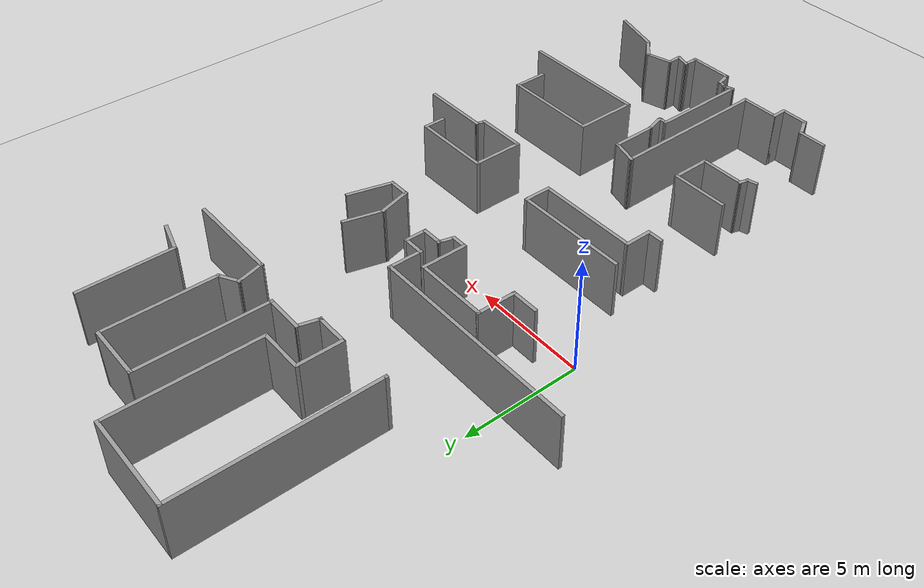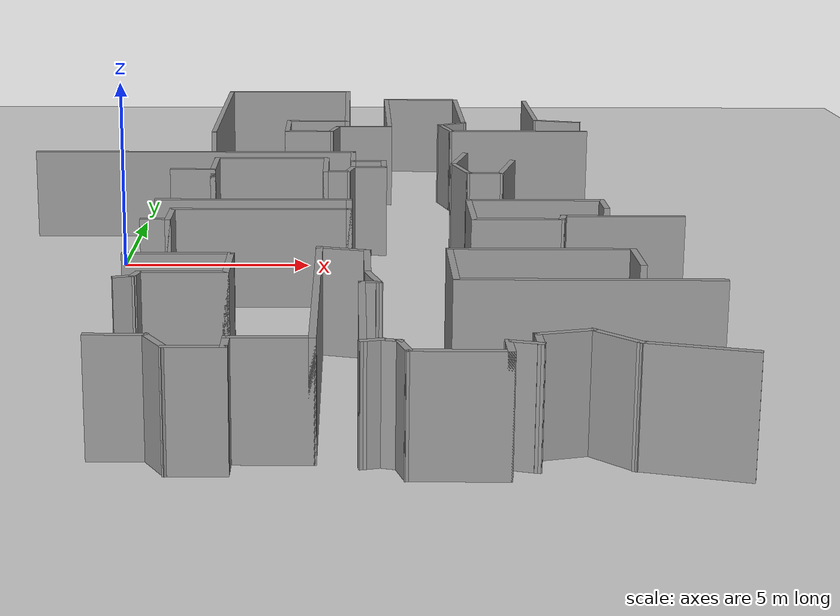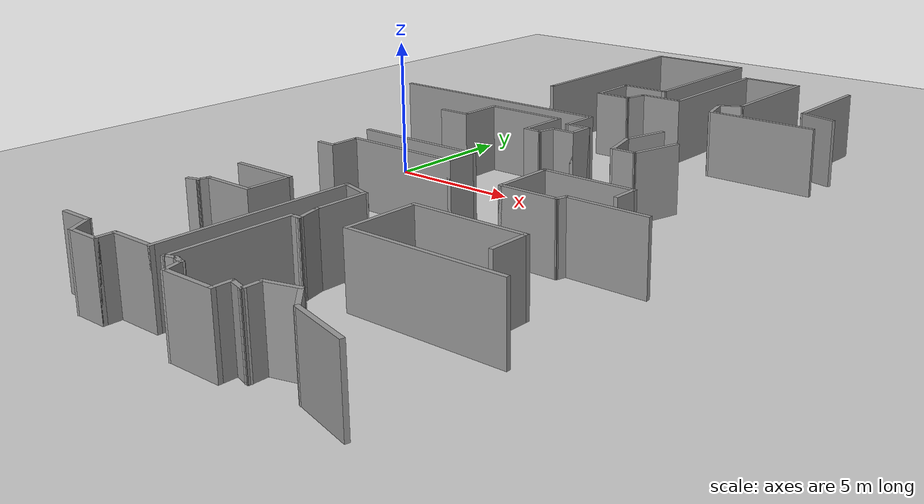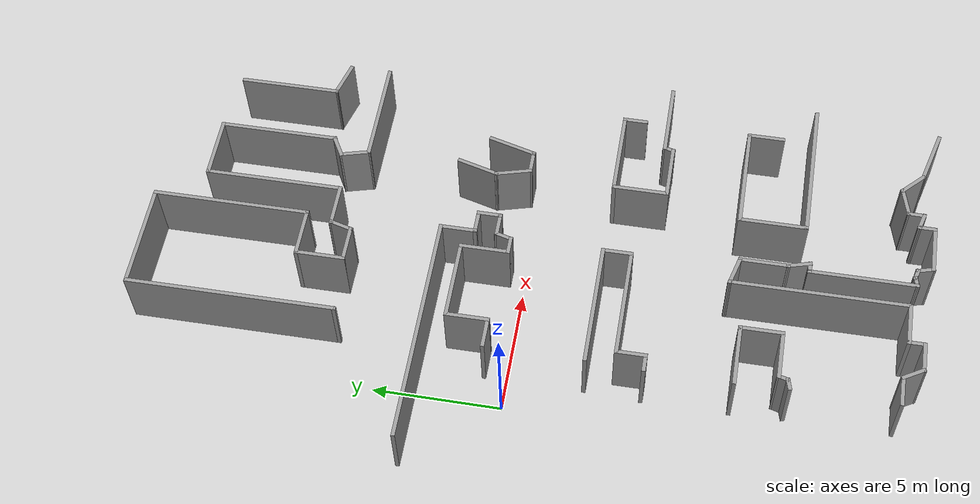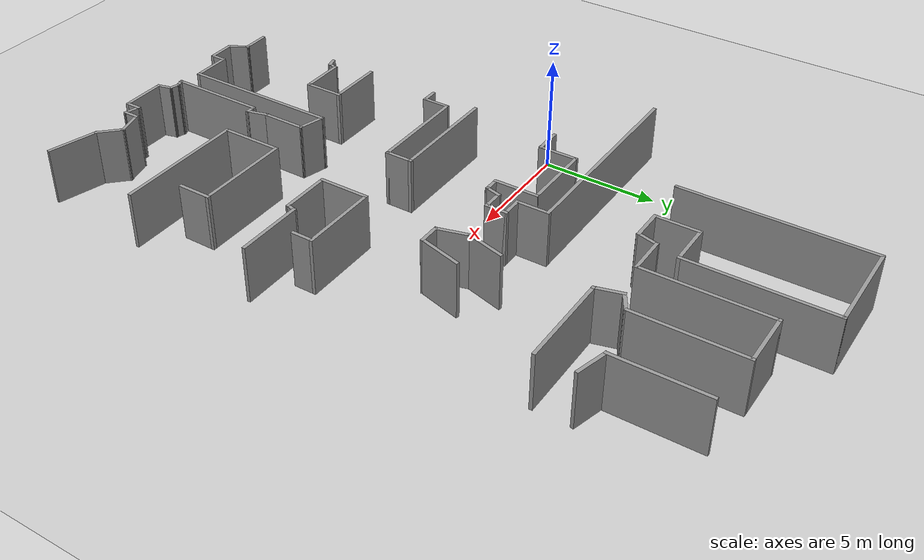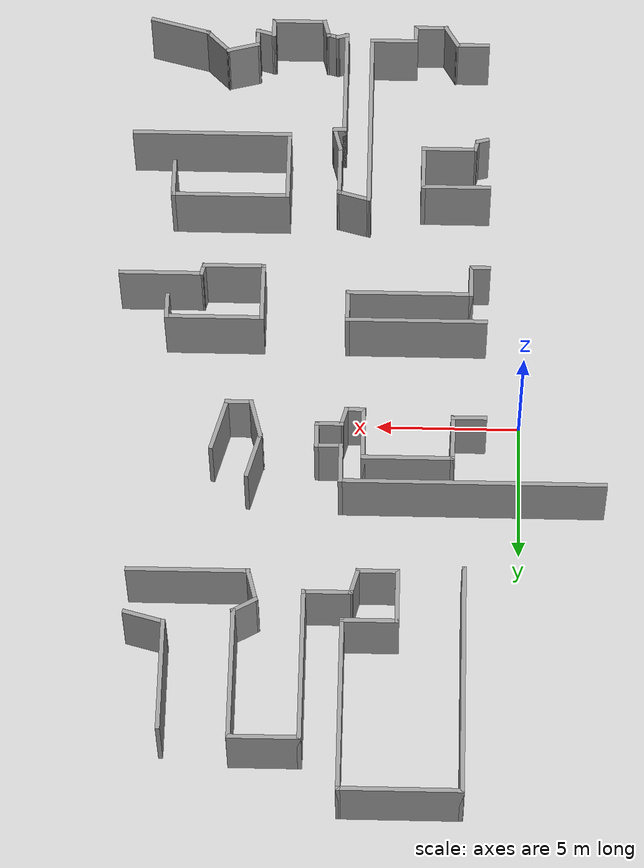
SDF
<sdf version="1.7">
 <world name="default">
  <model name="ground_plane">
   <static>1</static>
   <link name="link">
    <collision name="collision">
     <geometry><plane><normal>0 0 1</normal><size>100 100</size></plane></geometry>
     <surface>
      <contact><collide_bitmask>65535</collide_bitmask></contact>
      <friction><ode><mu>100</mu><mu2>50</mu2></ode></friction>
     </surface>
    </collision>
    <visual name="visual">
     <cast_shadows>0</cast_shadows>
     <geometry><plane><normal>0 0 1</normal><size>100 100</size></plane></geometry>
     <material>
      <script><uri>file://media/materials/scripts/gazebo.material</uri><name>Gazebo/Grey</name></script>
     </material>
    </visual>
   </link>
  </model>
  <model name="Hospital">
   <pose>0.328682 -0.388502 0 0 -0 0</pose>
   <link name="Wall_136">
    <collision name="Wall_136_Collision">
     <geometry><box><size>1.75 0.15 2.5</size></box></geometry>
     <pose>0 0 1.25 0 -0 0</pose>
    </collision>
    <visual name="Wall_136_Visual">
     <pose>0 0 1.25 0 -0 0</pose>
     <geometry><box><size>1.75 0.15 2.5</size></box></geometry>
     <material>
      <script><uri>file://media/materials/scripts/gazebo.material</uri><name>Gazebo/Grey</name></script>
      <ambient>1 1 1 1</ambient>
     </material>
     <meta><layer>0</layer></meta>
    </visual>
    <pose>8.88788 2.87767 0 0 -0 -1.8326</pose>
   </link>
   <link name="Wall_137">
    <collision name="Wall_137_Collision">
     <geometry><box><size>1.5 0.15 2.5</size></box></geometry>
     <pose>0 0 1.25 0 -0 0</pose>
    </collision>
    <visual name="Wall_137_Visual">
     <pose>0 0 1.25 0 -0 0</pose>
     <geometry><box><size>1.5 0.15 2.5</size></box></geometry>
     <material>
      <script><uri>file://media/materials/scripts/gazebo.material</uri><name>Gazebo/Grey</name></script>
      <ambient>1 1 1 1</ambient>
     </material>
     <meta><layer>0</layer></meta>
    </visual>
    <pose>8.85553 1.45293 0 0 -0 -1.309</pose>
   </link>
   <link name="Wall_138">
    <collision name="Wall_138_Collision">
     <geometry><box><size>1 0.15 2.5</size></box></geometry>
     <pose>0 0 1.25 0 -0 0</pose>
    </collision>
    <visual name="Wall_138_Visual">
     <pose>0 0 1.25 0 -0 0</pose>
     <geometry><box><size>1 0.15 2.5</size></box></geometry>
     <material>
      <script><uri>file://media/materials/scripts/gazebo.material</uri><name>Gazebo/Grey</name></script>
      <ambient>1 1 1 1</ambient>
     </material>
     <meta><layer>0</layer></meta>
    </visual>
    <pose>9.45523 0.800928 0 0 -0 0</pose>
   </link>
   <link name="Wall_139">
    <collision name="Wall_139_Collision">
     <geometry><box><size>2 0.15 2.5</size></box></geometry>
     <pose>0 0 1.25 0 -0 0</pose>
    </collision>
    <visual name="Wall_139_Visual">
     <pose>0 0 1.25 0 -0 0</pose>
     <geometry><box><size>2 0.15 2.5</size></box></geometry>
     <material>
      <script><uri>file://media/materials/scripts/gazebo.material</uri><name>Gazebo/Grey</name></script>
      <ambient>1 1 1 1</ambient>
     </material>
     <meta><layer>0</layer></meta>
    </visual>
    <pose>10.1196 1.69441 0 0 -0 1.309</pose>
   </link>
   <link name="Wall_147">
    <collision name="Wall_147_Collision">
     <geometry><box><size>1 0.15 2.5</size></box></geometry>
     <pose>0 0 1.25 0 -0 0</pose>
    </collision>
    <visual name="Wall_147_Visual">
     <pose>0 0 1.25 0 -0 0</pose>
     <geometry><box><size>1 0.15 2.5</size></box></geometry>
     <material>
      <script><uri>file://media/materials/scripts/gazebo.material</uri><name>Gazebo/Grey</name></script>
      <ambient>1 1 1 1</ambient>
     </material>
     <meta><layer>0</layer></meta>
    </visual>
    <pose>12.138 -3.00711 0 0 -0 1.5708</pose>
   </link>
   <link name="Wall_148">
    <collision name="Wall_148_Collision">
     <geometry><box><size>3.5 0.15 2.5</size></box></geometry>
     <pose>0 0 1.25 0 -0 0</pose>
    </collision>
    <visual name="Wall_148_Visual">
     <pose>0 0 1.25 0 -0 0</pose>
     <geometry><box><size>3.5 0.15 2.5</size></box></geometry>
     <material>
      <script><uri>file://media/materials/scripts/gazebo.material</uri><name>Gazebo/Grey</name></script>
      <ambient>1 1 1 1</ambient>
     </material>
     <meta><layer>0</layer></meta>
    </visual>
    <pose>10.463 -2.5821 0 0 -0 3.14159</pose>
   </link>
   <link name="Wall_149">
    <collision name="Wall_149_Collision">
     <geometry><box><size>2.25 0.15 2.5</size></box></geometry>
     <pose>0 0 1.25 0 -0 0</pose>
    </collision>
    <visual name="Wall_149_Visual">
     <pose>0 0 1.25 0 -0 0</pose>
     <geometry><box><size>2.25 0.15 2.5</size></box></geometry>
     <material>
      <script><uri>file://media/materials/scripts/gazebo.material</uri><name>Gazebo/Grey</name></script>
      <ambient>1 1 1 1</ambient>
     </material>
     <meta><layer>0</layer></meta>
    </visual>
    <pose>8.78801 -3.63211 0 0 -0 -1.5708</pose>
   </link>
   <link name="Wall_150">
    <collision name="Wall_150_Collision">
     <geometry><box><size>2.25 0.15 2.5</size></box></geometry>
     <pose>0 0 1.25 0 -0 0</pose>
    </collision>
    <visual name="Wall_150_Visual">
     <pose>0 0 1.25 0 -0 0</pose>
     <geometry><box><size>2.25 0.15 2.5</size></box></geometry>
     <material>
      <script><uri>file://media/materials/scripts/gazebo.material</uri><name>Gazebo/Grey</name></script>
      <ambient>1 1 1 1</ambient>
     </material>
     <meta><layer>0</layer></meta>
    </visual>
    <pose>9.83801 -4.68211 0 0 -0 0</pose>
   </link>
   <link name="Wall_151">
    <collision name="Wall_151_Collision">
     <geometry><box><size>0.5 0.15 2.5</size></box></geometry>
     <pose>0 0 1.25 0 -0 0</pose>
    </collision>
    <visual name="Wall_151_Visual">
     <pose>0 0 1.25 0 -0 0</pose>
     <geometry><box><size>0.5 0.15 2.5</size></box></geometry>
     <material>
      <script><uri>file://media/materials/scripts/gazebo.material</uri><name>Gazebo/Grey</name></script>
      <ambient>1 1 1 1</ambient>
     </material>
     <meta><layer>0</layer></meta>
    </visual>
    <pose>10.9333 -4.51307 0 0 -0 1.309</pose>
   </link>
   <link name="Wall_152">
    <collision name="Wall_152_Collision">
     <geometry><box><size>3 0.15 2.5</size></box></geometry>
     <pose>0 0 1.25 0 -0 0</pose>
    </collision>
    <visual name="Wall_152_Visual">
     <pose>0 0 1.25 0 -0 0</pose>
     <geometry><box><size>3 0.15 2.5</size></box></geometry>
     <material>
      <script><uri>file://media/materials/scripts/gazebo.material</uri><name>Gazebo/Grey</name></script>
      <ambient>1 1 1 1</ambient>
     </material>
     <meta><layer>0</layer></meta>
    </visual>
    <pose>12.4036 -4.34403 0 0 -0 0</pose>
   </link>
   <link name="Wall_174">
    <collision name="Wall_174_Collision">
     <geometry><box><size>1.5 0.15 2.5</size></box></geometry>
     <pose>0 0 1.25 0 -0 0</pose>
    </collision>
    <visual name="Wall_174_Visual">
     <pose>0 0 1.25 0 -0 0</pose>
     <geometry><box><size>1.5 0.15 2.5</size></box></geometry>
     <material>
      <script><uri>file://media/materials/scripts/gazebo.material</uri><name>Gazebo/Grey</name></script>
      <ambient>1 1 1 1</ambient>
     </material>
     <meta><layer>0</layer></meta>
    </visual>
    <pose>12.1282 -8.31056 0 0 -0 1.5708</pose>
   </link>
   <link name="Wall_175">
    <collision name="Wall_175_Collision">
     <geometry><box><size>4.25 0.15 2.5</size></box></geometry>
     <pose>0 0 1.25 0 -0 0</pose>
    </collision>
    <visual name="Wall_175_Visual">
     <pose>0 0 1.25 0 -0 0</pose>
     <geometry><box><size>4.25 0.15 2.5</size></box></geometry>
     <material>
      <script><uri>file://media/materials/scripts/gazebo.material</uri><name>Gazebo/Grey</name></script>
      <ambient>1 1 1 1</ambient>
     </material>
     <meta><layer>0</layer></meta>
    </visual>
    <pose>10.0783 -7.63556 0 0 -0 3.14159</pose>
   </link>
   <link name="Wall_176">
    <collision name="Wall_176_Collision">
     <geometry><box><size>2.75 0.15 2.5</size></box></geometry>
     <pose>0 0 1.25 0 -0 0</pose>
    </collision>
    <visual name="Wall_176_Visual">
     <pose>0 0 1.25 0 -0 0</pose>
     <geometry><box><size>2.75 0.15 2.5</size></box></geometry>
     <material>
      <script><uri>file://media/materials/scripts/gazebo.material</uri><name>Gazebo/Grey</name></script>
      <ambient>1 1 1 1</ambient>
     </material>
     <meta><layer>0</layer></meta>
    </visual>
    <pose>8.02825 -8.93556 0 0 -0 -1.5708</pose>
   </link>
   <link name="Wall_177">
    <collision name="Wall_177_Collision">
     <geometry><box><size>5.75 0.15 2.5</size></box></geometry>
     <pose>0 0 1.25 0 -0 0</pose>
    </collision>
    <visual name="Wall_177_Visual">
     <pose>0 0 1.25 0 -0 0</pose>
     <geometry><box><size>5.75 0.15 2.5</size></box></geometry>
     <material>
      <script><uri>file://media/materials/scripts/gazebo.material</uri><name>Gazebo/Grey</name></script>
      <ambient>1 1 1 1</ambient>
     </material>
     <meta><layer>0</layer></meta>
    </visual>
    <pose>10.8283 -10.2356 0 0 -0 0</pose>
   </link>
   <link name="Wall_181">
    <collision name="Wall_181_Collision">
     <geometry><box><size>2.25 0.15 2.5</size></box></geometry>
     <pose>0 0 1.25 0 -0 0</pose>
    </collision>
    <visual name="Wall_181_Visual">
     <pose>0 0 1.25 0 -0 0</pose>
     <geometry><box><size>2.25 0.15 2.5</size></box></geometry>
     <material>
      <script><uri>file://media/materials/scripts/gazebo.material</uri><name>Gazebo/Grey</name></script>
      <ambient>1 1 1 1</ambient>
     </material>
     <meta><layer>0</layer></meta>
    </visual>
    <pose>12.1693 -14.8934 0 0 -0 2.87979</pose>
   </link>
   <link name="Wall_182">
    <collision name="Wall_182_Collision">
     <geometry><box><size>1.25 0.15 2.5</size></box></geometry>
     <pose>0 0 1.25 0 -0 0</pose>
    </collision>
    <visual name="Wall_182_Visual">
     <pose>0 0 1.25 0 -0 0</pose>
     <geometry><box><size>1.25 0.15 2.5</size></box></geometry>
     <material>
      <script><uri>file://media/materials/scripts/gazebo.material</uri><name>Gazebo/Grey</name></script>
      <ambient>1 1 1 1</ambient>
     </material>
     <meta><layer>0</layer></meta>
    </visual>
    <pose>10.7662 -14.2327 0 0 -0 2.35619</pose>
   </link>
   <link name="Wall_183">
    <collision name="Wall_183_Collision">
     <geometry><box><size>1.25 0.15 2.5</size></box></geometry>
     <pose>0 0 1.25 0 -0 0</pose>
    </collision>
    <visual name="Wall_183_Visual">
     <pose>0 0 1.25 0 -0 0</pose>
     <geometry><box><size>1.25 0.15 2.5</size></box></geometry>
     <material>
      <script><uri>file://media/materials/scripts/gazebo.material</uri><name>Gazebo/Grey</name></script>
      <ambient>1 1 1 1</ambient>
     </material>
     <meta><layer>0</layer></meta>
    </visual>
    <pose>9.84602 -13.9861 0 0 -0 -2.87979</pose>
   </link>
   <link name="Wall_184">
    <collision name="Wall_184_Collision">
     <geometry><box><size>0.75 0.15 2.5</size></box></geometry>
     <pose>0 0 1.25 0 -0 0</pose>
    </collision>
    <visual name="Wall_184_Visual">
     <pose>0 0 1.25 0 -0 0</pose>
     <geometry><box><size>0.75 0.15 2.5</size></box></geometry>
     <material>
      <script><uri>file://media/materials/scripts/gazebo.material</uri><name>Gazebo/Grey</name></script>
      <ambient>1 1 1 1</ambient>
     </material>
     <meta><layer>0</layer></meta>
    </visual>
    <pose>9.31476 -14.4285 0 0 -0 -1.5708</pose>
   </link>
   <link name="Wall_185">
    <collision name="Wall_185_Collision">
     <geometry><box><size>0.75 0.15 2.5</size></box></geometry>
     <pose>0 0 1.25 0 -0 0</pose>
    </collision>
    <visual name="Wall_185_Visual">
     <pose>0 0 1.25 0 -0 0</pose>
     <geometry><box><size>0.75 0.15 2.5</size></box></geometry>
     <material>
      <script><uri>file://media/materials/scripts/gazebo.material</uri><name>Gazebo/Grey</name></script>
      <ambient>1 1 1 1</ambient>
     </material>
     <meta><layer>0</layer></meta>
    </visual>
    <pose>9.02498 -14.6508 0 0 -0 2.87979</pose>
   </link>
   <link name="Wall_186">
    <collision name="Wall_186_Collision">
     <geometry><box><size>0.75 0.15 2.5</size></box></geometry>
     <pose>0 0 1.25 0 -0 0</pose>
    </collision>
    <visual name="Wall_186_Visual">
     <pose>0 0 1.25 0 -0 0</pose>
     <geometry><box><size>0.75 0.15 2.5</size></box></geometry>
     <material>
      <script><uri>file://media/materials/scripts/gazebo.material</uri><name>Gazebo/Grey</name></script>
      <ambient>1 1 1 1</ambient>
     </material>
     <meta><layer>0</layer></meta>
    </visual>
    <pose>8.73521 -14.8732 0 0 -0 -1.5708</pose>
   </link>
   <link name="Wall_187">
    <collision name="Wall_187_Collision">
     <geometry><box><size>2 0.15 2.5</size></box></geometry>
     <pose>0 0 1.25 0 -0 0</pose>
    </collision>
    <visual name="Wall_187_Visual">
     <pose>0 0 1.25 0 -0 0</pose>
     <geometry><box><size>2 0.15 2.5</size></box></geometry>
     <material>
      <script><uri>file://media/materials/scripts/gazebo.material</uri><name>Gazebo/Grey</name></script>
      <ambient>1 1 1 1</ambient>
     </material>
     <meta><layer>0</layer></meta>
    </visual>
    <pose>7.81021 -15.1732 0 0 -0 3.14159</pose>
   </link>
   <link name="Wall_188">
    <collision name="Wall_188_Collision">
     <geometry><box><size>0.75 0.15 2.5</size></box></geometry>
     <pose>0 0 1.25 0 -0 0</pose>
    </collision>
    <visual name="Wall_188_Visual">
     <pose>0 0 1.25 0 -0 0</pose>
     <geometry><box><size>0.75 0.15 2.5</size></box></geometry>
     <material>
      <script><uri>file://media/materials/scripts/gazebo.material</uri><name>Gazebo/Grey</name></script>
      <ambient>1 1 1 1</ambient>
     </material>
     <meta><layer>0</layer></meta>
    </visual>
    <pose>6.80756 -14.8834 0 0 -0 1.8326</pose>
   </link>
   <link name="Wall_189">
    <collision name="Wall_189_Collision">
     <geometry><box><size>0.5 0.15 2.5</size></box></geometry>
     <pose>0 0 1.25 0 -0 0</pose>
    </collision>
    <visual name="Wall_189_Visual">
     <pose>0 0 1.25 0 -0 0</pose>
     <geometry><box><size>0.5 0.15 2.5</size></box></geometry>
     <material>
      <script><uri>file://media/materials/scripts/gazebo.material</uri><name>Gazebo/Grey</name></script>
      <ambient>1 1 1 1</ambient>
     </material>
     <meta><layer>0</layer></meta>
    </visual>
    <pose>6.56088 -14.5483 0 0 -0 2.87979</pose>
   </link>
   <link name="Wall_190">
    <collision name="Wall_190_Collision">
     <geometry><box><size>0.5 0.15 2.5</size></box></geometry>
     <pose>0 0 1.25 0 -0 0</pose>
    </collision>
    <visual name="Wall_190_Visual">
     <pose>0 0 1.25 0 -0 0</pose>
     <geometry><box><size>0.5 0.15 2.5</size></box></geometry>
     <material>
      <script><uri>file://media/materials/scripts/gazebo.material</uri><name>Gazebo/Grey</name></script>
      <ambient>1 1 1 1</ambient>
     </material>
     <meta><layer>0</layer></meta>
    </visual>
    <pose>6.2228 -14.5483 0 0 -0 -2.87979</pose>
   </link>
   <link name="Wall_191">
    <collision name="Wall_191_Collision">
     <geometry><box><size>4.25 0.15 2.5</size></box></geometry>
     <pose>0 0 1.25 0 -0 0</pose>
    </collision>
    <visual name="Wall_191_Visual">
     <pose>0 0 1.25 0 -0 0</pose>
     <geometry><box><size>4.25 0.15 2.5</size></box></geometry>
     <material>
      <script><uri>file://media/materials/scripts/gazebo.material</uri><name>Gazebo/Grey</name></script>
      <ambient>1 1 1 1</ambient>
     </material>
     <meta><layer>0</layer></meta>
    </visual>
    <pose>6.05377 -12.5436 0 0 -0 1.5708</pose>
   </link>
   <link name="Wall_192">
    <collision name="Wall_192_Collision">
     <geometry><box><size>0.5 0.15 2.5</size></box></geometry>
     <pose>0 0 1.25 0 -0 0</pose>
    </collision>
    <visual name="Wall_192_Visual">
     <pose>0 0 1.25 0 -0 0</pose>
     <geometry><box><size>0.5 0.15 2.5</size></box></geometry>
     <material>
      <script><uri>file://media/materials/scripts/gazebo.material</uri><name>Gazebo/Grey</name></script>
      <ambient>1 1 1 1</ambient>
     </material>
     <meta><layer>0</layer></meta>
    </visual>
    <pose>6.22877 -10.4936 0 0 -0 0</pose>
   </link>
   <link name="Wall_193">
    <collision name="Wall_193_Collision">
     <geometry><box><size>1 0.15 2.5</size></box></geometry>
     <pose>0 0 1.25 0 -0 0</pose>
    </collision>
    <visual name="Wall_193_Visual">
     <pose>0 0 1.25 0 -0 0</pose>
     <geometry><box><size>1 0.15 2.5</size></box></geometry>
     <material>
      <script><uri>file://media/materials/scripts/gazebo.material</uri><name>Gazebo/Grey</name></script>
      <ambient>1 1 1 1</ambient>
     </material>
     <meta><layer>0</layer></meta>
    </visual>
    <pose>6.29377 -10.0831 0 0 -0 1.8326</pose>
   </link>
   <link name="Wall_194">
    <collision name="Wall_194_Collision">
     <geometry><box><size>2 0.15 2.5</size></box></geometry>
     <pose>0 0 1.25 0 -0 0</pose>
    </collision>
    <visual name="Wall_194_Visual">
     <pose>0 0 1.25 0 -0 0</pose>
     <geometry><box><size>2 0.15 2.5</size></box></geometry>
     <material>
      <script><uri>file://media/materials/scripts/gazebo.material</uri><name>Gazebo/Grey</name></script>
      <ambient>1 1 1 1</ambient>
     </material>
     <meta><layer>0</layer></meta>
    </visual>
    <pose>6.18377 -8.74759 0 0 -0 1.5708</pose>
   </link>
   <link name="Wall_195">
    <collision name="Wall_195_Collision">
     <geometry><box><size>1.25 0.15 2.5</size></box></geometry>
     <pose>0 0 1.25 0 -0 0</pose>
    </collision>
    <visual name="Wall_195_Visual">
     <pose>0 0 1.25 0 -0 0</pose>
     <geometry><box><size>1.25 0.15 2.5</size></box></geometry>
     <material>
      <script><uri>file://media/materials/scripts/gazebo.material</uri><name>Gazebo/Grey</name></script>
      <ambient>1 1 1 1</ambient>
     </material>
     <meta><layer>0</layer></meta>
    </visual>
    <pose>5.65251 -7.68024 0 0 -0 2.87979</pose>
   </link>
   <link name="Wall_196">
    <collision name="Wall_196_Collision">
     <geometry><box><size>7 0.15 2.5</size></box></geometry>
     <pose>0 0 1.25 0 -0 0</pose>
    </collision>
    <visual name="Wall_196_Visual">
     <pose>0 0 1.25 0 -0 0</pose>
     <geometry><box><size>7 0.15 2.5</size></box></geometry>
     <material>
      <script><uri>file://media/materials/scripts/gazebo.material</uri><name>Gazebo/Grey</name></script>
      <ambient>1 1 1 1</ambient>
     </material>
     <meta><layer>0</layer></meta>
    </visual>
    <pose>5.12125 -10.9629 0 0 -0 -1.5708</pose>
   </link>
   <link name="Wall_197">
    <collision name="Wall_197_Collision">
     <geometry><box><size>1.75 0.15 2.5</size></box></geometry>
     <pose>0 0 1.25 0 -0 0</pose>
    </collision>
    <visual name="Wall_197_Visual">
     <pose>0 0 1.25 0 -0 0</pose>
     <geometry><box><size>1.75 0.15 2.5</size></box></geometry>
     <material>
      <script><uri>file://media/materials/scripts/gazebo.material</uri><name>Gazebo/Grey</name></script>
      <ambient>1 1 1 1</ambient>
     </material>
     <meta><layer>0</layer></meta>
    </visual>
    <pose>4.32125 -14.3879 0 0 -0 3.14159</pose>
   </link>
   <link name="Wall_198">
    <collision name="Wall_198_Collision">
     <geometry><box><size>0.75 0.15 2.5</size></box></geometry>
     <pose>0 0 1.25 0 -0 0</pose>
    </collision>
    <visual name="Wall_198_Visual">
     <pose>0 0 1.25 0 -0 0</pose>
     <geometry><box><size>0.75 0.15 2.5</size></box></geometry>
     <material>
      <script><uri>file://media/materials/scripts/gazebo.material</uri><name>Gazebo/Grey</name></script>
      <ambient>1 1 1 1</ambient>
     </material>
     <meta><layer>0</layer></meta>
    </visual>
    <pose>3.52125 -14.6879 0 0 -0 -1.5708</pose>
   </link>
   <link name="Wall_199">
    <collision name="Wall_199_Collision">
     <geometry><box><size>1.25 0.15 2.5</size></box></geometry>
     <pose>0 0 1.25 0 -0 0</pose>
    </collision>
    <visual name="Wall_199_Visual">
     <pose>0 0 1.25 0 -0 0</pose>
     <geometry><box><size>1.25 0.15 2.5</size></box></geometry>
     <material>
      <script><uri>file://media/materials/scripts/gazebo.material</uri><name>Gazebo/Grey</name></script>
      <ambient>1 1 1 1</ambient>
     </material>
     <meta><layer>0</layer></meta>
    </visual>
    <pose>2.97125 -14.9879 0 0 -0 3.14159</pose>
   </link>
   <link name="Wall_200">
    <collision name="Wall_200_Collision">
     <geometry><box><size>1 0.15 2.5</size></box></geometry>
     <pose>0 0 1.25 0 -0 0</pose>
    </collision>
    <visual name="Wall_200_Visual">
     <pose>0 0 1.25 0 -0 0</pose>
     <geometry><box><size>1 0.15 2.5</size></box></geometry>
     <material>
      <script><uri>file://media/materials/scripts/gazebo.material</uri><name>Gazebo/Grey</name></script>
      <ambient>1 1 1 1</ambient>
     </material>
     <meta><layer>0</layer></meta>
    </visual>
    <pose>2.20875 -14.6198 0 0 -0 2.0944</pose>
   </link>
   <link name="Wall_201">
    <collision name="Wall_201_Collision">
     <geometry><box><size>1.25 0.15 2.5</size></box></geometry>
     <pose>0 0 1.25 0 -0 0</pose>
    </collision>
    <visual name="Wall_201_Visual">
     <pose>0 0 1.25 0 -0 0</pose>
     <geometry><box><size>1.25 0.15 2.5</size></box></geometry>
     <material>
      <script><uri>file://media/materials/scripts/gazebo.material</uri><name>Gazebo/Grey</name></script>
      <ambient>1 1 1 1</ambient>
     </material>
     <meta><layer>0</layer></meta>
    </visual>
    <pose>1.44625 -14.2518 0 0 -0 3.14159</pose>
   </link>
   <link name="Wall_203">
    <collision name="Wall_203_Collision">
     <geometry><box><size>0.5 0.15 2.5</size></box></geometry>
     <pose>0 0 1.25 0 -0 0</pose>
    </collision>
    <visual name="Wall_203_Visual">
     <pose>0 0 1.25 0 -0 0</pose>
     <geometry><box><size>0.5 0.15 2.5</size></box></geometry>
     <material>
      <script><uri>file://media/materials/scripts/gazebo.material</uri><name>Gazebo/Grey</name></script>
      <ambient>1 1 1 1</ambient>
     </material>
     <meta><layer>0</layer></meta>
    </visual>
    <pose>1.06529 -10.1065 0 0 -0 0.261799</pose>
   </link>
   <link name="Wall_204">
    <collision name="Wall_204_Collision">
     <geometry><box><size>0.5 0.15 2.5</size></box></geometry>
     <pose>0 0 1.25 0 -0 0</pose>
    </collision>
    <visual name="Wall_204_Visual">
     <pose>0 0 1.25 0 -0 0</pose>
     <geometry><box><size>0.5 0.15 2.5</size></box></geometry>
     <material>
      <script><uri>file://media/materials/scripts/gazebo.material</uri><name>Gazebo/Grey</name></script>
      <ambient>1 1 1 1</ambient>
     </material>
     <meta><layer>0</layer></meta>
    </visual>
    <pose>1.27962 -9.89215 0 0 -0 1.309</pose>
   </link>
   <link name="Wall_205">
    <collision name="Wall_205_Collision">
     <geometry><box><size>2 0.15 2.5</size></box></geometry>
     <pose>0 0 1.25 0 -0 0</pose>
    </collision>
    <visual name="Wall_205_Visual">
     <pose>0 0 1.25 0 -0 0</pose>
     <geometry><box><size>2 0.15 2.5</size></box></geometry>
     <material>
      <script><uri>file://media/materials/scripts/gazebo.material</uri><name>Gazebo/Grey</name></script>
      <ambient>1 1 1 1</ambient>
     </material>
     <meta><layer>0</layer></meta>
    </visual>
    <pose>2.24991 -9.72311 0 0 -0 0</pose>
   </link>
   <link name="Wall_206">
    <collision name="Wall_206_Collision">
     <geometry><box><size>1.75 0.15 2.5</size></box></geometry>
     <pose>0 0 1.25 0 -0 0</pose>
    </collision>
    <visual name="Wall_206_Visual">
     <pose>0 0 1.25 0 -0 0</pose>
     <geometry><box><size>1.75 0.15 2.5</size></box></geometry>
     <material>
      <script><uri>file://media/materials/scripts/gazebo.material</uri><name>Gazebo/Grey</name></script>
      <ambient>1 1 1 1</ambient>
     </material>
     <meta><layer>0</layer></meta>
    </visual>
    <pose>3.17491 -8.92311 0 0 -0 1.5708</pose>
   </link>
   <link name="Wall_207">
    <collision name="Wall_207_Collision">
     <geometry><box><size>2.5 0.15 2.5</size></box></geometry>
     <pose>0 0 1.25 0 -0 0</pose>
    </collision>
    <visual name="Wall_207_Visual">
     <pose>0 0 1.25 0 -0 0</pose>
     <geometry><box><size>2.5 0.15 2.5</size></box></geometry>
     <material>
      <script><uri>file://media/materials/scripts/gazebo.material</uri><name>Gazebo/Grey</name></script>
      <ambient>1 1 1 1</ambient>
     </material>
     <meta><layer>0</layer></meta>
    </visual>
    <pose>1.99991 -8.12311 0 0 -0 3.14159</pose>
   </link>
   <link name="Wall_209">
    <collision name="Wall_209_Collision">
     <geometry><box><size>0.75 0.15 2.5</size></box></geometry>
     <pose>0 0 1.25 0 -0 0</pose>
    </collision>
    <visual name="Wall_209_Visual">
     <pose>0 0 1.25 0 -0 0</pose>
     <geometry><box><size>0.75 0.15 2.5</size></box></geometry>
     <material>
      <script><uri>file://media/materials/scripts/gazebo.material</uri><name>Gazebo/Grey</name></script>
      <ambient>1 1 1 1</ambient>
     </material>
     <meta><layer>0</layer></meta>
    </visual>
    <pose>1.12491 -4.77311 0 0 -0 0</pose>
   </link>
   <link name="Wall_210">
    <collision name="Wall_210_Collision">
     <geometry><box><size>1.25 0.15 2.5</size></box></geometry>
     <pose>0 0 1.25 0 -0 0</pose>
    </collision>
    <visual name="Wall_210_Visual">
     <pose>0 0 1.25 0 -0 0</pose>
     <geometry><box><size>1.25 0.15 2.5</size></box></geometry>
     <material>
      <script><uri>file://media/materials/scripts/gazebo.material</uri><name>Gazebo/Grey</name></script>
      <ambient>1 1 1 1</ambient>
     </material>
     <meta><layer>0</layer></meta>
    </visual>
    <pose>1.42491 -4.22311 0 0 -0 1.5708</pose>
   </link>
   <link name="Wall_211">
    <collision name="Wall_211_Collision">
     <geometry><box><size>4.5 0.15 2.5</size></box></geometry>
     <pose>0 0 1.25 0 -0 0</pose>
    </collision>
    <visual name="Wall_211_Visual">
     <pose>0 0 1.25 0 -0 0</pose>
     <geometry><box><size>4.5 0.15 2.5</size></box></geometry>
     <material>
      <script><uri>file://media/materials/scripts/gazebo.material</uri><name>Gazebo/Grey</name></script>
      <ambient>1 1 1 1</ambient>
     </material>
     <meta><layer>0</layer></meta>
    </visual>
    <pose>3.59991 -3.67311 0 0 -0 0</pose>
   </link>
   <link name="Wall_212">
    <collision name="Wall_212_Collision">
     <geometry><box><size>1.25 0.15 2.5</size></box></geometry>
     <pose>0 0 1.25 0 -0 0</pose>
    </collision>
    <visual name="Wall_212_Visual">
     <pose>0 0 1.25 0 -0 0</pose>
     <geometry><box><size>1.25 0.15 2.5</size></box></geometry>
     <material>
      <script><uri>file://media/materials/scripts/gazebo.material</uri><name>Gazebo/Grey</name></script>
      <ambient>1 1 1 1</ambient>
     </material>
     <meta><layer>0</layer></meta>
    </visual>
    <pose>5.77491 -3.12311 0 0 -0 1.5708</pose>
   </link>
   <link name="Wall_213">
    <collision name="Wall_213_Collision">
     <geometry><box><size>5 0.15 2.5</size></box></geometry>
     <pose>0 0 1.25 0 -0 0</pose>
    </collision>
    <visual name="Wall_213_Visual">
     <pose>0 0 1.25 0 -0 0</pose>
     <geometry><box><size>5 0.15 2.5</size></box></geometry>
     <material>
      <script><uri>file://media/materials/scripts/gazebo.material</uri><name>Gazebo/Grey</name></script>
      <ambient>1 1 1 1</ambient>
     </material>
     <meta><layer>0</layer></meta>
    </visual>
    <pose>3.34991 -2.57311 0 0 -0 3.14159</pose>
   </link>
   <link name="Wall_215">
    <collision name="Wall_215_Collision">
     <geometry><box><size>1.25 0.15 2.5</size></box></geometry>
     <pose>0 0 1.25 0 -0 0</pose>
    </collision>
    <visual name="Wall_215_Visual">
     <pose>0 0 1.25 0 -0 0</pose>
     <geometry><box><size>1.25 0.15 2.5</size></box></geometry>
     <material>
      <script><uri>file://media/materials/scripts/gazebo.material</uri><name>Gazebo/Grey</name></script>
      <ambient>1 1 1 1</ambient>
     </material>
     <meta><layer>0</layer></meta>
    </visual>
    <pose>1.47491 1.27689 0 0 -0 0</pose>
   </link>
   <link name="Wall_216">
    <collision name="Wall_216_Collision">
     <geometry><box><size>1.75 0.15 2.5</size></box></geometry>
     <pose>0 0 1.25 0 -0 0</pose>
    </collision>
    <visual name="Wall_216_Visual">
     <pose>0 0 1.25 0 -0 0</pose>
     <geometry><box><size>1.75 0.15 2.5</size></box></geometry>
     <material>
      <script><uri>file://media/materials/scripts/gazebo.material</uri><name>Gazebo/Grey</name></script>
      <ambient>1 1 1 1</ambient>
     </material>
     <meta><layer>0</layer></meta>
    </visual>
    <pose>2.02491 2.07689 0 0 -0 1.5708</pose>
   </link>
   <link name="Wall_217">
    <collision name="Wall_217_Collision">
     <geometry><box><size>3.25 0.15 2.5</size></box></geometry>
     <pose>0 0 1.25 0 -0 0</pose>
    </collision>
    <visual name="Wall_217_Visual">
     <pose>0 0 1.25 0 -0 0</pose>
     <geometry><box><size>3.25 0.15 2.5</size></box></geometry>
     <material>
      <script><uri>file://media/materials/scripts/gazebo.material</uri><name>Gazebo/Grey</name></script>
      <ambient>1 1 1 1</ambient>
     </material>
     <meta><layer>0</layer></meta>
    </visual>
    <pose>3.57491 2.87689 0 0 -0 0</pose>
   </link>
   <link name="Wall_218">
    <collision name="Wall_218_Collision">
     <geometry><box><size>2 0.15 2.5</size></box></geometry>
     <pose>0 0 1.25 0 -0 0</pose>
    </collision>
    <visual name="Wall_218_Visual">
     <pose>0 0 1.25 0 -0 0</pose>
     <geometry><box><size>2 0.15 2.5</size></box></geometry>
     <material>
      <script><uri>file://media/materials/scripts/gazebo.material</uri><name>Gazebo/Grey</name></script>
      <ambient>1 1 1 1</ambient>
     </material>
     <meta><layer>0</layer></meta>
    </visual>
    <pose>5.12491 1.95189 0 0 -0 -1.5708</pose>
   </link>
   <link name="Wall_219">
    <collision name="Wall_219_Collision">
     <geometry><box><size>0.75 0.15 2.5</size></box></geometry>
     <pose>0 0 1.25 0 -0 0</pose>
    </collision>
    <visual name="Wall_219_Visual">
     <pose>0 0 1.25 0 -0 0</pose>
     <geometry><box><size>0.75 0.15 2.5</size></box></geometry>
     <material>
      <script><uri>file://media/materials/scripts/gazebo.material</uri><name>Gazebo/Grey</name></script>
      <ambient>1 1 1 1</ambient>
     </material>
     <meta><layer>0</layer></meta>
    </visual>
    <pose>5.42491 1.02689 0 0 -0 0</pose>
   </link>
   <link name="Wall_220">
    <collision name="Wall_220_Collision">
     <geometry><box><size>0.75 0.15 2.5</size></box></geometry>
     <pose>0 0 1.25 0 -0 0</pose>
    </collision>
    <visual name="Wall_220_Visual">
     <pose>0 0 1.25 0 -0 0</pose>
     <geometry><box><size>0.75 0.15 2.5</size></box></geometry>
     <material>
      <script><uri>file://media/materials/scripts/gazebo.material</uri><name>Gazebo/Grey</name></script>
      <ambient>1 1 1 1</ambient>
     </material>
     <meta><layer>0</layer></meta>
    </visual>
    <pose>5.80256 1.31667 0 0 -0 1.309</pose>
   </link>
   <link name="Wall_221">
    <collision name="Wall_221_Collision">
     <geometry><box><size>1 0.15 2.5</size></box></geometry>
     <pose>0 0 1.25 0 -0 0</pose>
    </collision>
    <visual name="Wall_221_Visual">
     <pose>0 0 1.25 0 -0 0</pose>
     <geometry><box><size>1 0.15 2.5</size></box></geometry>
     <material>
      <script><uri>file://media/materials/scripts/gazebo.material</uri><name>Gazebo/Grey</name></script>
      <ambient>1 1 1 1</ambient>
     </material>
     <meta><layer>0</layer></meta>
    </visual>
    <pose>6.3052 1.60644 0 0 -0 0</pose>
   </link>
   <link name="Wall_222">
    <collision name="Wall_222_Collision">
     <geometry><box><size>1 0.15 2.5</size></box></geometry>
     <pose>0 0 1.25 0 -0 0</pose>
    </collision>
    <visual name="Wall_222_Visual">
     <pose>0 0 1.25 0 -0 0</pose>
     <geometry><box><size>1 0.15 2.5</size></box></geometry>
     <material>
      <script><uri>file://media/materials/scripts/gazebo.material</uri><name>Gazebo/Grey</name></script>
      <ambient>1 1 1 1</ambient>
     </material>
     <meta><layer>0</layer></meta>
    </visual>
    <pose>6.7302 2.03144 0 0 -0 1.5708</pose>
   </link>
   <link name="Wall_223">
    <collision name="Wall_223_Collision">
     <geometry><box><size>1 0.15 2.5</size></box></geometry>
     <pose>0 0 1.25 0 -0 0</pose>
    </collision>
    <visual name="Wall_223_Visual">
     <pose>0 0 1.25 0 -0 0</pose>
     <geometry><box><size>1 0.15 2.5</size></box></geometry>
     <material>
      <script><uri>file://media/materials/scripts/gazebo.material</uri><name>Gazebo/Grey</name></script>
      <ambient>1 1 1 1</ambient>
     </material>
     <meta><layer>0</layer></meta>
    </visual>
    <pose>6.3052 2.45644 0 0 -0 3.14159</pose>
   </link>
   <link name="Wall_224">
    <collision name="Wall_224_Collision">
     <geometry><box><size>1.5 0.15 2.5</size></box></geometry>
     <pose>0 0 1.25 0 -0 0</pose>
    </collision>
    <visual name="Wall_224_Visual">
     <pose>0 0 1.25 0 -0 0</pose>
     <geometry><box><size>1.5 0.15 2.5</size></box></geometry>
     <material>
      <script><uri>file://media/materials/scripts/gazebo.material</uri><name>Gazebo/Grey</name></script>
      <ambient>1 1 1 1</ambient>
     </material>
     <meta><layer>0</layer></meta>
    </visual>
    <pose>5.88021 3.13144 0 0 -0 1.5708</pose>
   </link>
   <link name="Wall_225">
    <collision name="Wall_225_Collision">
     <geometry><box><size>9.25 0.15 2.5</size></box></geometry>
     <pose>0 0 1.25 0 -0 0</pose>
    </collision>
    <visual name="Wall_225_Visual">
     <pose>0 0 1.25 0 -0 0</pose>
     <geometry><box><size>9.25 0.15 2.5</size></box></geometry>
     <material>
      <script><uri>file://media/materials/scripts/gazebo.material</uri><name>Gazebo/Grey</name></script>
      <ambient>1 1 1 1</ambient>
     </material>
     <meta><layer>0</layer></meta>
    </visual>
    <pose>1.3302 3.80644 0 0 -0 3.14159</pose>
   </link>
   <link name="Wall_45">
    <collision name="Wall_45_Collision">
     <geometry><box><size>0.15 0.15 2.5</size></box></geometry>
     <pose>0 0 1.25 0 -0 0</pose>
    </collision>
    <visual name="Wall_45_Visual">
     <pose>0 0 1.25 0 -0 0</pose>
     <geometry><box><size>0.15 0.15 2.5</size></box></geometry>
     <material>
      <script><uri>file://media/materials/scripts/gazebo.material</uri><name>Gazebo/Grey</name></script>
      <ambient>1 1 1 1</ambient>
     </material>
     <meta><layer>0</layer></meta>
    </visual>
    <pose>1.59495 7.09004 0 0 -0 0</pose>
   </link>
   <link name="Wall_46">
    <collision name="Wall_46_Collision">
     <geometry><box><size>8.25 0.15 2.5</size></box></geometry>
     <pose>0 0 1.25 0 -0 0</pose>
    </collision>
    <visual name="Wall_46_Visual">
     <pose>0 0 1.25 0 -0 0</pose>
     <geometry><box><size>8.25 0.15 2.5</size></box></geometry>
     <material>
      <script><uri>file://media/materials/scripts/gazebo.material</uri><name>Gazebo/Grey</name></script>
      <ambient>1 1 1 1</ambient>
     </material>
     <meta><layer>0</layer></meta>
    </visual>
    <pose>1.59495 11.14 0 0 -0 1.5708</pose>
   </link>
   <link name="Wall_47">
    <collision name="Wall_47_Collision">
     <geometry><box><size>4.25 0.15 2.5</size></box></geometry>
     <pose>0 0 1.25 0 -0 0</pose>
    </collision>
    <visual name="Wall_47_Visual">
     <pose>0 0 1.25 0 -0 0</pose>
     <geometry><box><size>4.25 0.15 2.5</size></box></geometry>
     <material>
      <script><uri>file://media/materials/scripts/gazebo.material</uri><name>Gazebo/Grey</name></script>
      <ambient>1 1 1 1</ambient>
     </material>
     <meta><layer>0</layer></meta>
    </visual>
    <pose>3.64495 15.19 0 0 -0 0</pose>
   </link>
   <link name="Wall_48">
    <collision name="Wall_48_Collision">
     <geometry><box><size>6.25 0.15 2.5</size></box></geometry>
     <pose>0 0 1.25 0 -0 0</pose>
    </collision>
    <visual name="Wall_48_Visual">
     <pose>0 0 1.25 0 -0 0</pose>
     <geometry><box><size>6.25 0.15 2.5</size></box></geometry>
     <material>
      <script><uri>file://media/materials/scripts/gazebo.material</uri><name>Gazebo/Grey</name></script>
      <ambient>1 1 1 1</ambient>
     </material>
     <meta><layer>0</layer></meta>
    </visual>
    <pose>5.69495 12.14 0 0 -0 -1.5708</pose>
   </link>
   <link name="Wall_49">
    <collision name="Wall_49_Collision">
     <geometry><box><size>2 0.15 2.5</size></box></geometry>
     <pose>0 0 1.25 0 -0 0</pose>
    </collision>
    <visual name="Wall_49_Visual">
     <pose>0 0 1.25 0 -0 0</pose>
     <geometry><box><size>2 0.15 2.5</size></box></geometry>
     <material>
      <script><uri>file://media/materials/scripts/gazebo.material</uri><name>Gazebo/Grey</name></script>
      <ambient>1 1 1 1</ambient>
     </material>
     <meta><layer>0</layer></meta>
    </visual>
    <pose>4.76995 9.09004 0 0 -0 3.14159</pose>
   </link>
   <link name="Wall_50">
    <collision name="Wall_50_Collision">
     <geometry><box><size>2 0.15 2.5</size></box></geometry>
     <pose>0 0 1.25 0 -0 0</pose>
    </collision>
    <visual name="Wall_50_Visual">
     <pose>0 0 1.25 0 -0 0</pose>
     <geometry><box><size>2 0.15 2.5</size></box></geometry>
     <material>
      <script><uri>file://media/materials/scripts/gazebo.material</uri><name>Gazebo/Grey</name></script>
      <ambient>1 1 1 1</ambient>
     </material>
     <meta><layer>0</layer></meta>
    </visual>
    <pose>3.84495 8.16504 0 0 -0 -1.5708</pose>
   </link>
   <link name="Wall_51">
    <collision name="Wall_51_Collision">
     <geometry><box><size>1.5 0.15 2.5</size></box></geometry>
     <pose>0 0 1.25 0 -0 0</pose>
    </collision>
    <visual name="Wall_51_Visual">
     <pose>0 0 1.25 0 -0 0</pose>
     <geometry><box><size>1.5 0.15 2.5</size></box></geometry>
     <material>
      <script><uri>file://media/materials/scripts/gazebo.material</uri><name>Gazebo/Grey</name></script>
      <ambient>1 1 1 1</ambient>
     </material>
     <meta><layer>0</layer></meta>
    </visual>
    <pose>4.51995 7.24004 0 0 -0 0</pose>
   </link>
   <link name="Wall_52">
    <collision name="Wall_52_Collision">
     <geometry><box><size>1 0.15 2.5</size></box></geometry>
     <pose>0 0 1.25 0 -0 0</pose>
    </collision>
    <visual name="Wall_52_Visual">
     <pose>0 0 1.25 0 -0 0</pose>
     <geometry><box><size>1 0.15 2.5</size></box></geometry>
     <material>
      <script><uri>file://media/materials/scripts/gazebo.material</uri><name>Gazebo/Grey</name></script>
      <ambient>1 1 1 1</ambient>
     </material>
     <meta><layer>0</layer></meta>
    </visual>
    <pose>5.30495 7.65056 0 0 -0 1.309</pose>
   </link>
   <link name="Wall_53">
    <collision name="Wall_53_Collision">
     <geometry><box><size>1.75 0.15 2.5</size></box></geometry>
     <pose>0 0 1.25 0 -0 0</pose>
    </collision>
    <visual name="Wall_53_Visual">
     <pose>0 0 1.25 0 -0 0</pose>
     <geometry><box><size>1.75 0.15 2.5</size></box></geometry>
     <material>
      <script><uri>file://media/materials/scripts/gazebo.material</uri><name>Gazebo/Grey</name></script>
      <ambient>1 1 1 1</ambient>
     </material>
     <meta><layer>0</layer></meta>
    </visual>
    <pose>6.21495 8.06108 0 0 -0 0</pose>
   </link>
   <link name="Wall_54">
    <collision name="Wall_54_Collision">
     <geometry><box><size>5.5 0.15 2.5</size></box></geometry>
     <pose>0 0 1.25 0 -0 0</pose>
    </collision>
    <visual name="Wall_54_Visual">
     <pose>0 0 1.25 0 -0 0</pose>
     <geometry><box><size>5.5 0.15 2.5</size></box></geometry>
     <material>
      <script><uri>file://media/materials/scripts/gazebo.material</uri><name>Gazebo/Grey</name></script>
      <ambient>1 1 1 1</ambient>
     </material>
     <meta><layer>0</layer></meta>
    </visual>
    <pose>7.01495 10.7361 0 0 -0 1.5708</pose>
   </link>
   <link name="Wall_55">
    <collision name="Wall_55_Collision">
     <geometry><box><size>2.5 0.15 2.5</size></box></geometry>
     <pose>0 0 1.25 0 -0 0</pose>
    </collision>
    <visual name="Wall_55_Visual">
     <pose>0 0 1.25 0 -0 0</pose>
     <geometry><box><size>2.5 0.15 2.5</size></box></geometry>
     <material>
      <script><uri>file://media/materials/scripts/gazebo.material</uri><name>Gazebo/Grey</name></script>
      <ambient>1 1 1 1</ambient>
     </material>
     <meta><layer>0</layer></meta>
    </visual>
    <pose>8.18995 13.4111 0 0 -0 0</pose>
   </link>
   <link name="Wall_56">
    <collision name="Wall_56_Collision">
     <geometry><box><size>4.75 0.15 2.5</size></box></geometry>
     <pose>0 0 1.25 0 -0 0</pose>
    </collision>
    <visual name="Wall_56_Visual">
     <pose>0 0 1.25 0 -0 0</pose>
     <geometry><box><size>4.75 0.15 2.5</size></box></geometry>
     <material>
      <script><uri>file://media/materials/scripts/gazebo.material</uri><name>Gazebo/Grey</name></script>
      <ambient>1 1 1 1</ambient>
     </material>
     <meta><layer>0</layer></meta>
    </visual>
    <pose>9.36495 11.1111 0 0 -0 -1.5708</pose>
   </link>
   <link name="Wall_57">
    <collision name="Wall_57_Collision">
     <geometry><box><size>1 0.15 2.5</size></box></geometry>
     <pose>0 0 1.25 0 -0 0</pose>
    </collision>
    <visual name="Wall_57_Visual">
     <pose>0 0 1.25 0 -0 0</pose>
     <geometry><box><size>1 0.15 2.5</size></box></geometry>
     <material>
      <script><uri>file://media/materials/scripts/gazebo.material</uri><name>Gazebo/Grey</name></script>
      <ambient>1 1 1 1</ambient>
     </material>
     <meta><layer>0</layer></meta>
    </visual>
    <pose>8.99689 8.59858 0 0 -0 -2.61799</pose>
   </link>
   <link name="Wall_58">
    <collision name="Wall_58_Collision">
     <geometry><box><size>1.25 0.15 2.5</size></box></geometry>
     <pose>0 0 1.25 0 -0 0</pose>
    </collision>
    <visual name="Wall_58_Visual">
     <pose>0 0 1.25 0 -0 0</pose>
     <geometry><box><size>1.25 0.15 2.5</size></box></geometry>
     <material>
      <script><uri>file://media/materials/scripts/gazebo.material</uri><name>Gazebo/Grey</name></script>
      <ambient>1 1 1 1</ambient>
     </material>
     <meta><layer>0</layer></meta>
    </visual>
    <pose>8.77118 7.85482 0 0 -0 -1.309</pose>
   </link>
   <link name="Wall_59">
    <collision name="Wall_59_Collision">
     <geometry><box><size>4.25 0.15 2.5</size></box></geometry>
     <pose>0 0 1.25 0 -0 0</pose>
    </collision>
    <visual name="Wall_59_Visual">
     <pose>0 0 1.25 0 -0 0</pose>
     <geometry><box><size>4.25 0.15 2.5</size></box></geometry>
     <material>
      <script><uri>file://media/materials/scripts/gazebo.material</uri><name>Gazebo/Grey</name></script>
      <ambient>1 1 1 1</ambient>
     </material>
     <meta><layer>0</layer></meta>
    </visual>
    <pose>10.9635 7.32356 0 0 -0 0</pose>
   </link>
   <link name="Wall_61">
    <collision name="Wall_61_Collision">
     <geometry><box><size>1.5 0.15 2.5</size></box></geometry>
     <pose>0 0 1.25 0 -0 0</pose>
    </collision>
    <visual name="Wall_61_Visual">
     <pose>0 0 1.25 0 -0 0</pose>
     <geometry><box><size>1.5 0.15 2.5</size></box></geometry>
     <material>
      <script><uri>file://media/materials/scripts/gazebo.material</uri><name>Gazebo/Grey</name></script>
      <ambient>1 1 1 1</ambient>
     </material>
     <meta><layer>0</layer></meta>
    </visual>
    <pose>12.3615 9.09826 0 0 -0 2.87979</pose>
   </link>
   <link name="Wall_62">
    <collision name="Wall_62_Collision">
     <geometry><box><size>4 0.15 2.5</size></box></geometry>
     <pose>0 0 1.25 0 -0 0</pose>
    </collision>
    <visual name="Wall_62_Visual">
     <pose>0 0 1.25 0 -0 0</pose>
     <geometry><box><size>4 0.15 2.5</size></box></geometry>
     <material>
      <script><uri>file://media/materials/scripts/gazebo.material</uri><name>Gazebo/Grey</name></script>
      <ambient>1 1 1 1</ambient>
     </material>
     <meta><layer>0</layer></meta>
    </visual>
    <pose>11.7095 11.198 0 0 -0 1.5708</pose>
   </link>
   <static>1</static>
  </model>
 </world>
</sdf>
